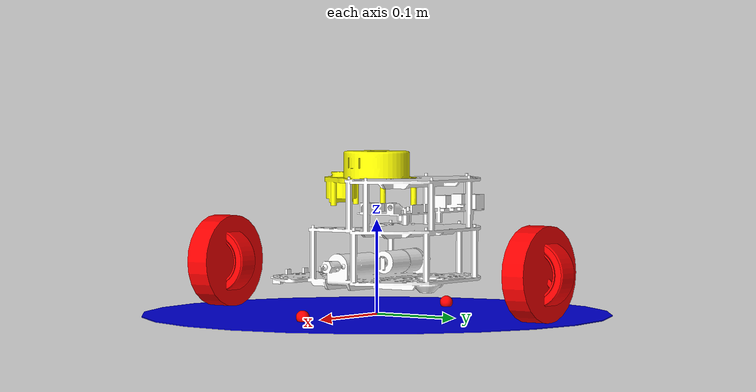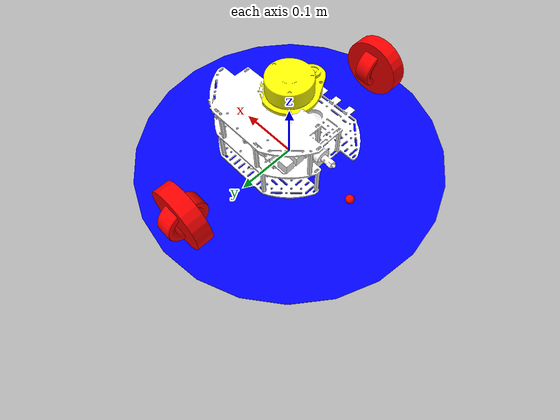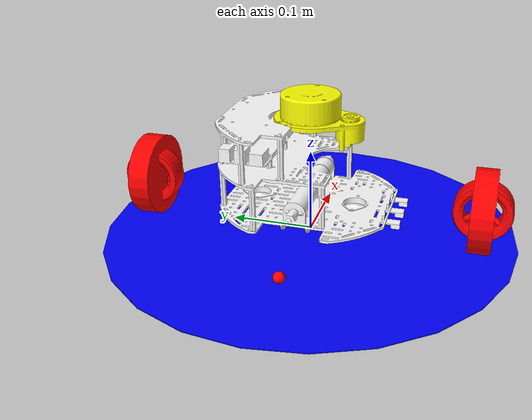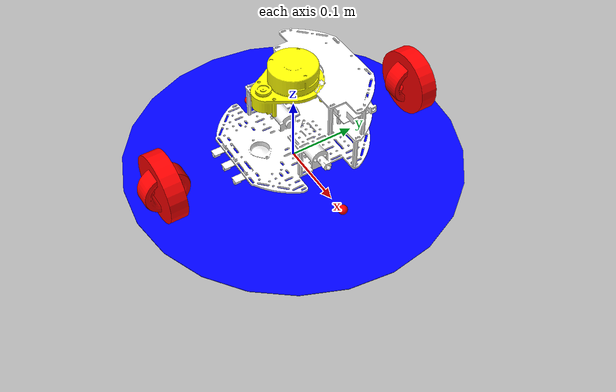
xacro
<?xml version="1.0" encoding="utf-8"?>
<robot name="abot"
	xmlns:xacro="http://www.ros.org/wiki/xacro">

	<xacro:property name="clearance" value="0" />
	<xacro:property name="wheel_radius" value="0.05"/>
	<xacro:property name="wheel_separation" value="0.152"/>
	<xacro:property name="wheel_width" value="0.026"/>
	<xacro:property name="PI" value="3.1415926"/>

		<xacro:include filename="$(find abot_description)/urdf/abot_matherials.xacro" />

	<link name="base_link">
		<visual>
			<origin xyz="0 0 0" rpy="0 0 0" />
			<geometry>
				<sphere radius="0.001" />
			</geometry>
		</visual>
	</link>

	<link name="base_footprint">
		<visual>
			<origin xyz="0 0 0" rpy="0 0 0" />
			<geometry>
				<cylinder length="0.001" radius="0.250" />
			</geometry>
			<material name="Blue" />
		</visual>
	</link>

	<link name="robot_base">
		<visual>
			<origin xyz="0 0 0" rpy="0 0 0" />
			<geometry>
				<mesh filename="package://abot_description/meshes/abot_base.STL" />
			</geometry>
			<material name="White" />
		</visual>

		<collision>
			<origin xyz="0 0 0" rpy="0 0 0" />
			<geometry>
				<mesh filename="package://abot_description/meshes/abot_base.STL" />
			</geometry>
		</collision>
	</link>

	<joint name="base_link_to_abot_base" type="fixed">
		<origin xyz="0 0 0.02" rpy="0 0 0" />
		<parent link="base_link" />
		<child link="robot_base" />
	</joint>

	<joint name="base_footprint_to_base_link" type="fixed">
		<origin xyz="0 0 ${clearance}" rpy="0 0 0" />
		<parent link="base_footprint" />
		<child link="base_link" />
	</joint>

	<xacro:include filename="$(find abot_description)/urdf/abot_left_wheel.xacro" />
	<xacro:include filename="$(find abot_description)/urdf/abot_right_wheel.xacro" />
	<xacro:include filename="$(find abot_description)/urdf/abot_caster_wheel.xacro" />
	<xacro:include filename="$(find abot_description)/urdf/abot_sensors.xacro" />
</robot>

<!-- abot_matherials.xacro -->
<robot
	xmlns:xacro="http://www.ros.org/wiki/xacro">
	<material name="Green">
		<color rgba="0.0 1.0 0.0 1.0"/>
	</material>
	<material name="Blue">
		<color rgba="0.0 0.0 1.0 1.0"/>
	</material>
	<material name="Red">
		<color rgba="1.0 0.0 0.0 1.0"/>
	</material>
	<material name="White">
		<color rgba="1.0 1.0 1.0 1.0"/>
	</material>
	<material name="Yellow">
		<color rgba="1.0 1.0 0.0 1.0"/>
	</material>
</robot>

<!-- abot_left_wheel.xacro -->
<robot name="abot"
	xmlns:xacro="http://www.ros.org/wiki/xacro">

	<link name="robot_left_wheel">
		<visual>
			<origin xyz="0 0 0" rpy="0 0 0" />
			<geometry>
				<mesh filename="package://abot_description/meshes/abot_left_wheel.STL" />
			</geometry>
			<material name="Red" />
		</visual>

		<collision>
			<origin xyz="0 0 0" rpy="0 0 0" />
			<geometry>
				<mesh filename="package://abot_description/meshes/abot_left_wheel.STL" />
			</geometry>
		</collision>
	</link>

	<link name="left_wheel">
		<visual>
			<origin xyz="0 0 0" rpy="${PI/2} 0 0" />
			<geometry>
				<cylinder length="${wheel_width}" radius="${wheel_radius}"/>
			</geometry>
			<material name="Red" />
		</visual>

		<collision>
			<origin xyz="0 0 0" rpy="${PI/2} 0 0" />
			<geometry>
				<cylinder length="${wheel_width}" radius="${wheel_radius}"/>
			</geometry>
		</collision>
	</link>

	<joint name="left_wheel_to_robot_left_wheel" type="fixed">
		<origin xyz="0 0 0" rpy="0 0 0" />
		<parent link="left_wheel" />
		<child link="robot_left_wheel" />
	</joint>

	<joint name="left_wheel_to_base" type="continuous">
		<origin xyz="0 0.205 0.03" rpy="0 0 0" />
		<parent link="robot_base" />
		<child link="left_wheel" />
		<axis xyz="0 1 0" />
	</joint>
</robot>

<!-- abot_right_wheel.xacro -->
<robot name="abot"
	xmlns:xacro="http://www.ros.org/wiki/xacro">

	<link name="robot_right_wheel">
		<visual>
			<origin xyz="0 0 0" rpy="0 0 0" />
			<geometry>
				<mesh filename="package://abot_description/meshes/abot_right_wheel.STL" />
			</geometry>
			<material name="Red" />
		</visual>

		<collision>
			<origin xyz="0 0 0" rpy="0 0 0" />
			<geometry>
				<mesh filename="package://abot_description/meshes/abot_right_wheel.STL" />
			</geometry>
		</collision>
	</link>

	<link name="right_wheel">
		<visual>
			<origin xyz="0 0 0" rpy="${PI/2} 0 0" />
			<geometry>
				<cylinder length="${wheel_width}" radius="${wheel_radius}"/>
			</geometry>
			<material name="Red" />
		</visual>

		<collision>
			<origin xyz="0 0 0" rpy="${PI/2} 0 0" />
			<geometry>
				<cylinder length="${wheel_width}" radius="${wheel_radius}"/>
			</geometry>
		</collision>
	</link>

	<joint name="right_wheel_to_robot_right_wheel" type="fixed">
		<origin xyz="0 0 0" rpy="0 0 0" />
		<parent link="right_wheel" />
		<child link="robot_right_wheel" />
	</joint>

	<joint name="right_wheel_to_base" type="continuous">
		<origin xyz="0 -0.205 0.03" rpy="0 0 0" />
		<parent link="robot_base" />
		<child link="right_wheel" />
		<axis xyz="0 1 0" />
	</joint>
</robot>

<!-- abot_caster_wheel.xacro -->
<robot name="abot"
	xmlns:xacro="http://www.ros.org/wiki/xacro">

	<link name="robot_caster_wheel_1">
		<visual>
			<origin xyz="0 0 0" rpy="0 0 0" />
			<geometry>
				<mesh filename="package://abot_description/meshes/abot_caster_wheel.STL" />
			</geometry>
			<material name="Red" />
		</visual>

		<collision>
			<origin xyz="0 0 0" rpy="0 0 0" />
			<geometry>
				<mesh filename="package://abot_description/meshes/abot_caster_wheel.STL" />
			</geometry>
		</collision>
	</link>

	<link name="robot_caster_wheel_2">
		<visual>
			<origin xyz="0 0 0" rpy="0 0 0" />
			<geometry>
				<mesh filename="package://abot_description/meshes/abot_caster_wheel.STL" />
			</geometry>
			<material name="Red" />
		</visual>

		<collision>
			<origin xyz="0 0 0" rpy="0 0 0" />
			<geometry>
				<mesh filename="package://abot_description/meshes/abot_caster_wheel.STL" />
			</geometry>
		</collision>
	</link>

	<joint name="caster_wheel_1_to_base" type="continuous">
		<origin xyz="-0.13 0 -0.015" rpy="0 0 0" />
		<parent link="robot_base" />
		<child link="robot_caster_wheel_1" />
		<axis xyz="0 1 0" />
	</joint>

	<joint name="caster_wheel_2_to_base" type="continuous">
		<origin xyz="0.13 0 -0.015" rpy="0 0 0" />
		<parent link="robot_base" />
		<child link="robot_caster_wheel_2" />
		<axis xyz="0 1 0" />
	</joint>
</robot>

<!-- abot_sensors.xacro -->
<robot name="abot"
	xmlns:xacro="http://www.ros.org/wiki/xacro">

	<link name="robot_lidar">
		<visual>
			<origin xyz="0 0 0" rpy="0 0 0"/>
			<geometry>
				<mesh filename="package://abot_description/meshes/abot_lidar.STL"/>
			</geometry>
			<material name="Yellow"/>
		</visual>

		<collision>
			<origin xyz="0 0 0" rpy="0 0 0"/>
			<geometry>
				<mesh filename="package://abot_description/meshes/abot_lidar.STL"/>
			</geometry>
		</collision>
	</link>

	<joint name="lidar_to_base" type="fixed">
		<origin xyz="0 0 0.12" rpy="0 0 ${PI}"/>
		<parent link="robot_base"/>
		<child link="robot_lidar"/>
		<axis xyz="0 0 0"/>
	</joint>
</robot>
